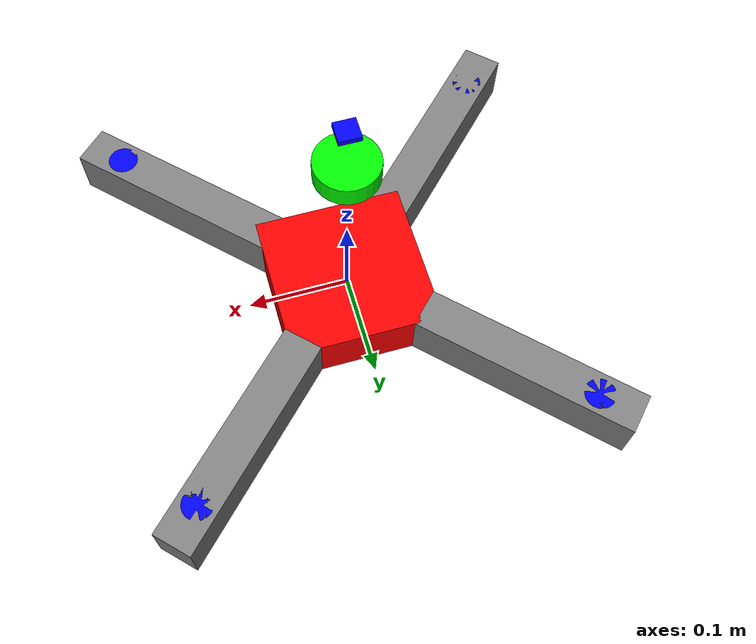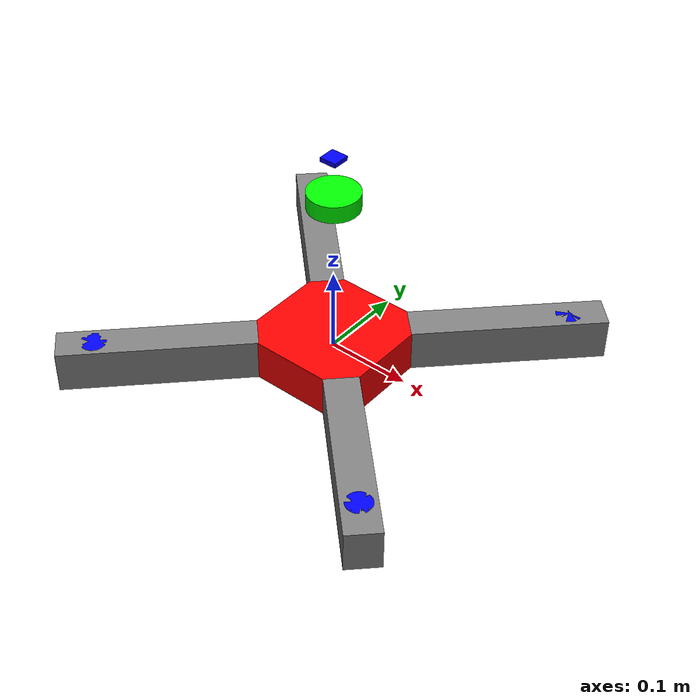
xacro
<?xml version="1.0"?>
<robot xmlns:xacro="http://ros.org/wiki/xacro" name="Udaan">

<!-- ===== IMU Sensor Plugin Block ===== -->
<gazebo reference="imu_link">
  <sensor type="imu" name="imu_sensor">
    <always_on>true</always_on>
    <update_rate>100.0</update_rate>
    <visualize>true</visualize>

    <imu>
      <angular_velocity>
        <noise type="gaussian">
          <mean>0.0</mean>
          <stddev>0.01</stddev>
          <bias_mean>0.0</bias_mean>
          <bias_stddev>0.0</bias_stddev>
        </noise>
      </angular_velocity>
      <linear_acceleration>
        <noise type="gaussian">
          <mean>0.0</mean>
          <stddev>0.1</stddev>
          <bias_mean>0.0</bias_mean>
          <bias_stddev>0.0</bias_stddev>
        </noise>
      </linear_acceleration>
    </imu>
   <plugin name="imu_plugin" filename="libgazebo_ros_imu_sensor.so">
  <ros>
    <remapping>imu/data:=/imu/data</remapping>
  </ros>
  <topicName>/imu/data</topicName>
  <frameName>imu_link</frameName>
   </plugin>

  </sensor>
</gazebo>

<!-- ===== LIDAR Sensor Plugin Block ===== -->
<gazebo reference="lidar_link">
  <sensor name="lidar_sensor" type="ray">
    <pose>0 0 0 0 0 0</pose>
    <visualize>true</visualize>
    <update_rate>10</update_rate>
    <ray>
      <scan>
        <horizontal>
          <samples>360</samples>
          <resolution>1</resolution>
          <min_angle>-3.14</min_angle>
          <max_angle>3.14</max_angle>
        </horizontal>
      </scan>
      <range>
        <min>0.1</min>
        <max>10.0</max>
        <resolution>0.01</resolution>
      </range>
      <noise>
        <type>gaussian</type>
        <mean>0.0</mean>
        <stddev>0.01</stddev>
      </noise>
    </ray>
    <plugin name="gazebo_ros_laser_controller" filename="libgazebo_ros_ray_sensor.so">
      <ros>
        <remapping>scan:=/scan</remapping>
      </ros>
      <frame_name>lidar_link</frame_name>
      <pose>0 0 0 0 0 0</pose>
    </plugin>
  </sensor>
</gazebo>

<!-- ===== Barometer Sensor Plugin Block ===== -->
<gazebo reference="barometer_link">
  <sensor name="baro_sensor" type="altimeter">
    <pose>0 0 0 0 0 0</pose>
    <update_rate>10</update_rate>
    <plugin name="baro_plugin" filename="libgazebo_ros_altimeter.so">
      <topic_name>/barometer/data</topic_name>
      <frame_name>barometer_link</frame_name>
    </plugin>
  </sensor>
</gazebo>

<!--properties-->
    <xacro:property name="arm_length" value="0.225"/>
    <xacro:property name="arm_width" value="0.04"/>
    <xacro:property name="arm_height" value="0.05"/>
    <xacro:property name="motor_radius" value="0.015"/>
    <xacro:property name="motor_length" value="0.05"/>

<!--colors-->
    <material name="green">
        <color rgba="0 1 0 1" />
    </material>

    <material name="blue">
        <color rgba="0 0 1 1" />
    </material>

    <material name="red">
        <color rgba="1 0 0 1" />
    </material>

    <material name="grey">
        <color rgba="0.5 0.5 0.5 1" />
    </material>

<!--macros-->
    <xacro:macro name="arm_link" params="name xyz rpy">
        <link name="${name}">
            <visual>
                <geometry>
                    <box size="${arm_length} ${arm_width} ${arm_height}"/>
                </geometry>
                <origin xyz="${xyz}" rpy="${rpy}"/>
                <material name="grey"/>
            </visual>
            <inertial>
                <mass value="0.1"/>
                <origin xyz="0 0 0" rpy="0 0 0"/>
                <inertia ixx="3.42e-05" ixy="0.0" ixz="0.0"
                         iyy="4.43e-04" iyz="0.0" izz="4.35e-04"/>
            </inertial>
            <collision>
                <geometry>
                    <box size="${arm_length} ${arm_width} ${arm_height}"/>
                </geometry>
            </collision>
        </link>
    </xacro:macro>

    <xacro:macro name="motor_link" params="name xyz rpy">
        <link name="${name}">
            <visual>
                <geometry>
                    <cylinder radius="${motor_radius}" length="${motor_length}"/>
                </geometry>
                <origin xyz="${xyz}" rpy="${rpy}"/>
                <material name="blue"/>
            </visual>
            <inertial>
                <mass value="0.05"/>
                 <origin xyz="0 0 0" rpy="0 0 0"/>
                <inertia ixx="1.32e-05" ixy="0.0" ixz="0.0"
                         iyy="1.32e-05" iyz="0.0" izz="5.63e-06"/>
            </inertial>
            <collision>
                <geometry>
                    <cylinder radius="${motor_radius}" length="${motor_length}"/>
                </geometry>
            </collision>
        </link>
    </xacro:macro>

    <xacro:macro name="fixed_joint" params="name parent child xyz rpy">
        <joint name="${name}" type="fixed">
            <parent link="${parent}"/>
            <child link="${child}"/>
            <origin xyz="${xyz}" rpy="${rpy}"/>
        </joint>
    </xacro:macro>

    <xacro:macro name="motor_joint" params="name parent child xyz axis">
        <joint name="${name}" type="continuous">
            <parent link="${parent}"/>
            <child link="${child}"/>
            <origin xyz="${xyz}" rpy="0 0 0"/>
            <axis xyz="${axis}"/>
        </joint>
    </xacro:macro>

<!--base link-->
    <link name="base_link">
        <visual>
            <geometry>
                <box size="0.15 0.15 0.05"/>
            </geometry>
            <origin xyz="0 0 0" rpy="0 0 0"/>
            <material name="red"/>
        </visual>
        <inertial>
            <mass value="0.750" />
            <origin xyz="0 0 0" rpy="0 0 0"/>
            <inertia ixx="0.0028125" ixy="0.0" ixz="0.0"
                     iyy="0.0028125" iyz="0.0" izz="0.0015625"/>
        </inertial>
        <collision>
            <geometry>
                <box size="0.15 0.15 0.05" />
            </geometry>
        </collision>
    </link>

    <gazebo reference="base_link">
        <material>Gazebo/Red</material>
    </gazebo>

	<!-- Quad Arm and Motor Placement -->

<!--top right part-->
    <xacro:arm_link name="top_right_arm" xyz="0.075 0.075 0" rpy="0 0 0.785"/>
    <xacro:motor_link name="motor_top_right_arm" xyz="0 0 0" rpy="0 0 0"/>
    <!-- Joints: base_link ↔ top_right_arm ↔ motor_top_right_arm -->
    <xacro:fixed_joint name="base_top_right_arm_joint" parent="base_link" child="top_right_arm" xyz="0.065 0.065 0" rpy="0 0 0"/>
    <xacro:motor_joint name="top_right_arm_motor_joint" parent="top_right_arm" child="motor_top_right_arm" xyz="0.125 0.125 0" axis="0 0 -1"/>

<!--top left part-->
    <xacro:arm_link name="top_left_arm" xyz="-0.075 0.075 0" rpy="0 0 -0.785"/>
    <xacro:motor_link name="motor_top_left_arm" xyz="0 0 0" rpy="0 0 0"/>
    <!-- Joints: base_link ↔ top_left_arm ↔ motor_top_left_arm -->
    <xacro:fixed_joint name="base_top_left_arm_joint" parent="base_link" child="top_left_arm" xyz="-0.065 0.065 0" rpy="0 0 0"/>
    <xacro:motor_joint name="top_left_arm_motor_joint" parent="top_left_arm" child="motor_top_left_arm" xyz="-0.125 0.125 0" axis="0 0 1"/>

<!--bottom right part-->
    <xacro:arm_link name="bottom_right_arm" xyz="0.075 -0.075 0" rpy="0 0 -0.785"/>
    <xacro:motor_link name="motor_bottom_right_arm" xyz="0 0 0" rpy="0 0 0"/>
    <!-- Joints: base_link ↔ bottom_right_arm ↔ motor_bottom_right_arm -->
    <xacro:fixed_joint name="base_bottom_right_arm_joint" parent="base_link" child="bottom_right_arm" xyz="0.065 -0.065 0" rpy="0 0 0"/>
    <xacro:motor_joint name="bottom_right_arm_motor_joint" parent="bottom_right_arm" child="motor_bottom_right_arm" xyz="0.125 -0.125 0" axis="0 0 1"/>

<!--bottom left part-->
    <xacro:arm_link name="bottom_left_arm" xyz="-0.075 -0.075 0" rpy="0 0 -2.35"/>
    <xacro:motor_link name="motor_bottom_left_arm" xyz="0 0 0" rpy="0 0 0"/>
    <!-- Joints: base_link ↔ bottom_left_arm ↔ motor_bottom_left_arm -->
    <xacro:fixed_joint name="base_bottom_left_arm_joint" parent="base_link" child="bottom_left_arm" xyz="-0.065 -0.065 0" rpy="0 0 0"/>
    <xacro:motor_joint name="bottom_left_arm_motor_joint" parent="bottom_left_arm" child="motor_bottom_left_arm" xyz="-0.125 -0.125 0" axis="0 0 -1"/>

<!--sensor links-->

<!-- IMU Sensor Link -->
    <link name="imu_link">
        <visual>
            <geometry>
                <box size="0.05 0.05 0.01"/>
            </geometry>
            <origin xyz="0 0 0" rpy="0 0 0"/>
            <material name="green"/>
        </visual>
        <inertial>
            <mass value="0.01"/>
            <origin xyz="0 0 0" rpy="0 0 0"/>
            <inertia ixx="2.17e-06" ixy="0.0" ixz="0.0"
                     iyy="2.17e-06" iyz="0.0" izz="4.17e-06"/>
        </inertial>
        <collision>
            <geometry>
                <box size="0.05 0.05 0.01"/>
            </geometry>
        </collision>
    </link>

	<!-- LiDAR Sensor Link -->
    <link name="lidar_link">
        <visual>
            <geometry>
                <cylinder radius="0.03" length="0.02"/>
            </geometry>
            <origin xyz="0 0 0" rpy="0 0 0"/>
            <material name="green"/>
        </visual>
        <collision>
            <geometry>
                <cylinder radius="0.03" length="0.02"/>
            </geometry>
        </collision>
        <inertial>
            <mass value="0.2"/>
            <origin xyz="0 0 0" rpy="0 0 0"/>
            <inertia ixx="1e-5" ixy="0" ixz="0" iyy="1e-5" iyz="0" izz="1e-5"/>
        </inertial>
    </link>

<!-- Barometer Sensor Link -->
    <link name="barometer_link">
        <visual>
            <geometry>
                <box size="0.02 0.02 0.005"/>
            </geometry>
            <origin xyz="0 0 0" rpy="0 0 0"/>
            <material name="blue"/>
        </visual>
        <collision>
            <geometry>
                <box size="0.02 0.02 0.005"/>
            </geometry>
        </collision>
        <inertial>
            <mass value="0.05"/>
            <origin xyz="0 0 0" rpy="0 0 0"/>
            <inertia ixx="1e-5" ixy="0" ixz="0" iyy="1e-5" iyz="0" izz="1e-5"/>
        </inertial>
    </link>

<!--sensor joints-->
    <joint name="base_imu_joint" type="fixed">
        <parent link="base_link"/>
        <child link="imu_link"/>
        <origin xyz="0 0 0" rpy="0 0 0"/>
    </joint>

    <joint name="lidar_joint" type="fixed">
        <parent link="base_link"/>
        <child link="lidar_link"/>
        <origin xyz="0 0 0.2" rpy="0 0 0"/>
    </joint>

    <joint name="barometer_joint" type="fixed">
        <parent link="base_link"/>
        <child link="barometer_link"/>
        <origin xyz="0 0 0.25" rpy="0 0 0"/>
    </joint>

<!--sensors-->

</robot>
<!-- END OF ROBOT DEFINITION -->
